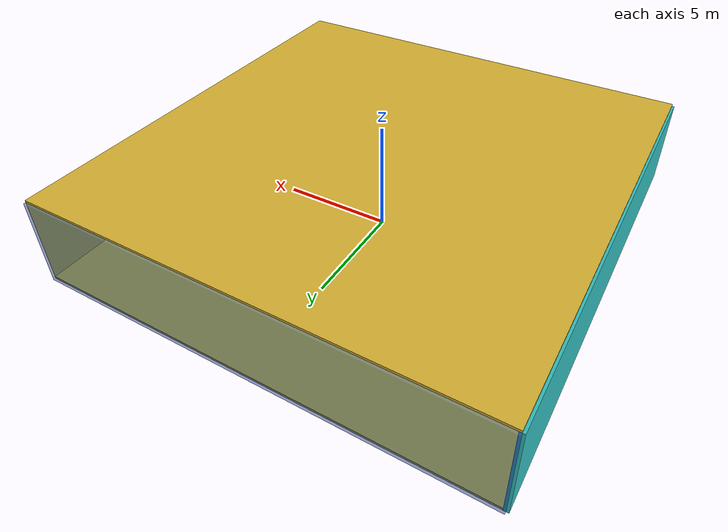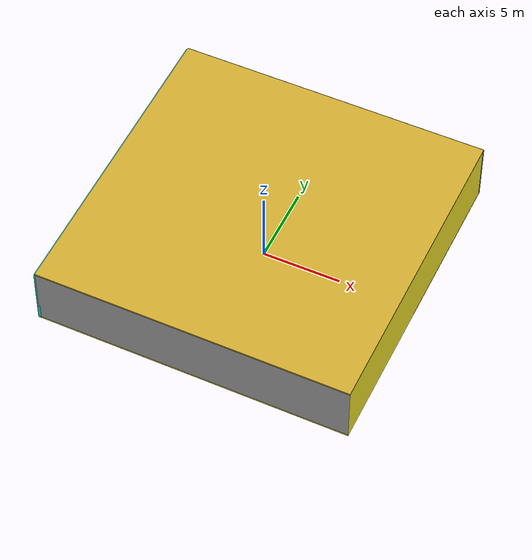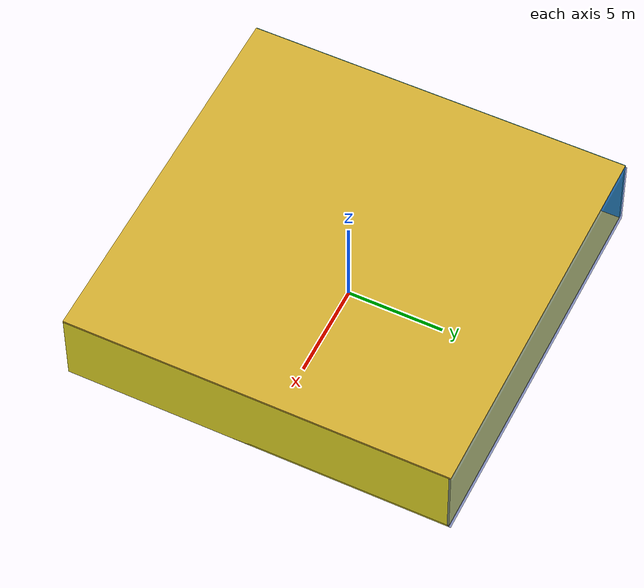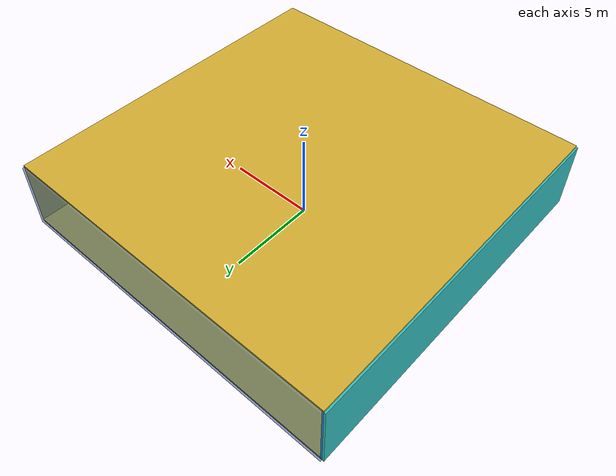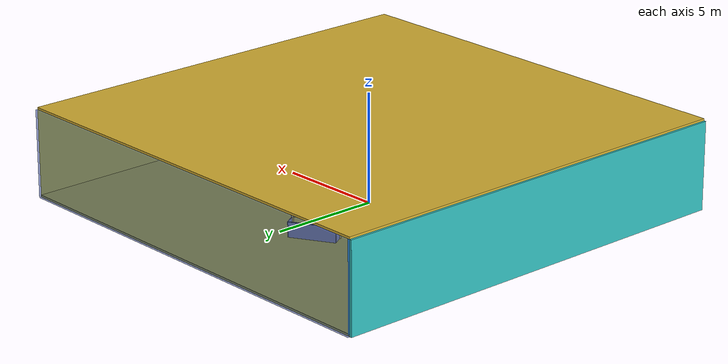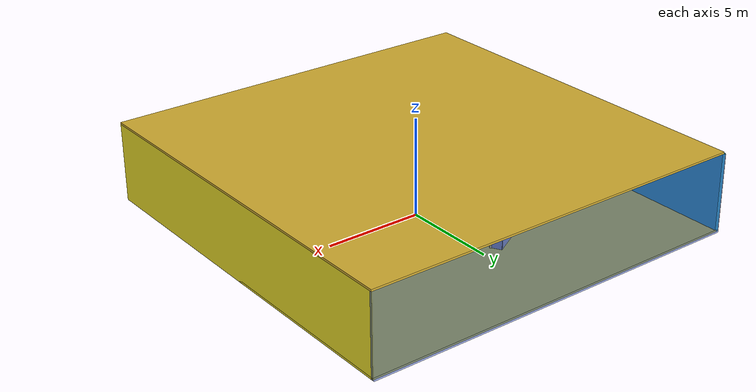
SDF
<sdf version="1.4">
 <world name="default">
  <physics type="ode">
   <max_step_size>0.001</max_step_size>
   <real_time_factor>1</real_time_factor>
   <real_time_update_rate>1000</real_time_update_rate>
   <gravity>0 0 -9.8</gravity>
  </physics>
  <scene><ambient>0.4 0.4 0.4 1</ambient><background>0.7 0.7 0.7 1</background><shadows>1</shadows></scene>
  <model name="Surrounding">
   <static>1</static>
   <link name="Ceiling">
    <collision name="Ceiling_Collision"><geometry><box><size>20 20 0.1</size></box></geometry></collision>
    <visual name="Ceiling_Visual">
     <geometry><box><size>20 20 0.1</size></box></geometry>
     <material>
      <script><uri>file://media/materials/scripts/gazebo.material</uri><name>Gazebo/Gold</name></script>
     </material>
    </visual>
    <pose>0 0 4.05 0 0 0</pose>
   </link>
   <link name="Wall_South">
    <collision name="Wall_South_Collision">
     <geometry><box><size>20 0 4</size></box></geometry>
     <pose>0 0 2 0 -0 0</pose>
    </collision>
    <visual name="Wall_South_Visual">
     <pose>0 0 2 0 -0 0</pose>
     <geometry><box><size>20 0 4</size></box></geometry>
     <material>
      <script><uri>file://media/materials/scripts/gazebo.material</uri><name>Gazebo/Grey</name></script>
     </material>
    </visual>
    <velocity_decay><linear>0</linear><angular>0</angular></velocity_decay>
    <pose>0 -10 0 0 -0 0</pose>
   </link>
   <link name="Wall_East">
    <collision name="Wall_21_Collision">
     <geometry><box><size>20 0 4</size></box></geometry>
     <pose>0 0 2 0 -0 0</pose>
    </collision>
    <visual name="Wall_21_Visual">
     <pose>0 0 2 0 -0 0</pose>
     <geometry><box><size>20 0 4</size></box></geometry>
     <material>
      <script><uri>file://media/materials/scripts/gazebo.material</uri><name>Gazebo/Yellow</name></script>
     </material>
    </visual>
    <velocity_decay><linear>0</linear><angular>0</angular></velocity_decay>
    <pose>10 0 0 0 -0 1.5708</pose>
   </link>
   <link name="Wall_North">
    <collision name="Wall_22_Collision">
     <geometry><box><size>20 0.2 4</size></box></geometry>
     <pose>0 0 2 0 -0 0</pose>
    </collision>
    <visual name="Wall_22_Visual">
     <pose>0 0 2 0 -0 0</pose>
     <geometry><box><size>20 0.2 4</size></box></geometry>
     <material>
      <script><uri>file://media/materials/scripts/gazebo.material</uri><name>Gazebo/BlueTransparent</name></script>
     </material>
    </visual>
    <velocity_decay><linear>0</linear><angular>0</angular></velocity_decay>
    <pose>0 10 0 0 -0 0</pose>
   </link>
   <link name="Wall_West">
    <collision name="Wall_23_Collision">
     <geometry><box><size>20 0.2 4</size></box></geometry>
     <pose>0 0 2 0 -0 0</pose>
    </collision>
    <visual name="Wall_23_Visual">
     <pose>0 0 2 0 -0 0</pose>
     <geometry><box><size>20 0.2 4</size></box></geometry>
     <material>
      <script><uri>file://media/materials/scripts/gazebo.material</uri><name>Gazebo/Turquoise</name></script>
     </material>
    </visual>
    <velocity_decay><linear>0</linear><angular>0</angular></velocity_decay>
    <pose>-10 0 0 0 0 -1.5708</pose>
   </link>
   <link name="Ground_link">
    <collision name="collision">
     <pose>0 0 .05 0 -0 0</pose>
     <geometry><box><size>20 20 0.1</size></box></geometry>
    </collision>
    <visual name="visual">
     <pose>0 0 .05 0 -0 0</pose>
     <geometry><box><size>20 20 0.1</size></box></geometry>
     <material>
      <script><uri>file://media/materials/scripts/gazebo.material</uri><name>Gazebo/Yellow</name></script>
     </material>
    </visual>
   </link>
   <static>1</static>
  </model>
  <spherical_coordinates>
   <surface_model>EARTH_WGS84</surface_model>
   <latitude_deg>0</latitude_deg>
   <longitude_deg>0</longitude_deg>
   <elevation>0</elevation>
   <heading_deg>0</heading_deg>
  </spherical_coordinates>
  <light name="lightball_0" type="diffuse">
   <diffuse>0.8 0.8 0.8 1</diffuse>
   <specular>0.2 0.2 0.2 1</specular>
   <attenuation>
    <range>100</range>
    <constant>0.7</constant>
    <linear>0.01</linear>
    <quadratic>0.001</quadratic>
   </attenuation>
   <direction>-0.5 0.1 -0.9</direction>
   <pose>-3.73245501716 -7.08485159895 2.77468745232 0 0 0</pose>
  </light>
  <light name="lightball_1" type="diffuse">
   <diffuse>0.8 0.8 0.8 1</diffuse>
   <specular>0.2 0.2 0.2 1</specular>
   <attenuation>
    <range>100</range>
    <constant>0.7</constant>
    <linear>0.01</linear>
    <quadratic>0.001</quadratic>
   </attenuation>
   <direction>-0.5 0.1 -0.9</direction>
   <pose>-9.93720009844 -0.903280667743 0.500925632591 0 0 0</pose>
  </light>
  <light name="lightball_2" type="diffuse">
   <diffuse>0.8 0.8 0.8 1</diffuse>
   <specular>0.2 0.2 0.2 1</specular>
   <attenuation>
    <range>100</range>
    <constant>0.7</constant>
    <linear>0.01</linear>
    <quadratic>0.001</quadratic>
   </attenuation>
   <direction>-0.5 0.1 -0.9</direction>
   <pose>-8.13334967059 8.15306069547 2.89767930498 0 0 0</pose>
  </light>
  <light name="lightball_3" type="diffuse">
   <diffuse>0.8 0.8 0.8 1</diffuse>
   <specular>0.2 0.2 0.2 1</specular>
   <attenuation>
    <range>100</range>
    <constant>0.7</constant>
    <linear>0.01</linear>
    <quadratic>0.001</quadratic>
   </attenuation>
   <direction>-0.5 0.1 -0.9</direction>
   <pose>-3.7696786673 0.918008648875 2.36411653255 0 0 0</pose>
  </light>
  <light name="lightball_4" type="diffuse">
   <diffuse>0.8 0.8 0.8 1</diffuse>
   <specular>0.2 0.2 0.2 1</specular>
   <attenuation>
    <range>100</range>
    <constant>0.7</constant>
    <linear>0.01</linear>
    <quadratic>0.001</quadratic>
   </attenuation>
   <direction>-0.5 0.1 -0.9</direction>
   <pose>8.62759699546 4.32853646415 2.31587621946 0 0 0</pose>
  </light>
  <light name="lightball_5" type="diffuse">
   <diffuse>0.8 0.8 0.8 1</diffuse>
   <specular>0.2 0.2 0.2 1</specular>
   <attenuation>
    <range>100</range>
    <constant>0.7</constant>
    <linear>0.01</linear>
    <quadratic>0.001</quadratic>
   </attenuation>
   <direction>-0.5 0.1 -0.9</direction>
   <pose>-8.27861097024 -9.65536792719 2.82617608674 0 0 0</pose>
  </light>
  <light name="lightball_6" type="diffuse">
   <diffuse>0.8 0.8 0.8 1</diffuse>
   <specular>0.2 0.2 0.2 1</specular>
   <attenuation>
    <range>100</range>
    <constant>0.7</constant>
    <linear>0.01</linear>
    <quadratic>0.001</quadratic>
   </attenuation>
   <direction>-0.5 0.1 -0.9</direction>
   <pose>-5.07712655664 -3.88637846816 2.13212480963 0 0 0</pose>
  </light>
  <light name="lightball_7" type="diffuse">
   <diffuse>0.8 0.8 0.8 1</diffuse>
   <specular>0.2 0.2 0.2 1</specular>
   <attenuation>
    <range>100</range>
    <constant>0.7</constant>
    <linear>0.01</linear>
    <quadratic>0.001</quadratic>
   </attenuation>
   <direction>-0.5 0.1 -0.9</direction>
   <pose>-3.31846608228 6.13121729027 3.44735017146 0 0 0</pose>
  </light>
  <light name="lightball_8" type="diffuse">
   <diffuse>0.8 0.8 0.8 1</diffuse>
   <specular>0.2 0.2 0.2 1</specular>
   <attenuation>
    <range>100</range>
    <constant>0.7</constant>
    <linear>0.01</linear>
    <quadratic>0.001</quadratic>
   </attenuation>
   <direction>-0.5 0.1 -0.9</direction>
   <pose>-4.55631973923 -5.10075218294 0.817294544108 0 0 0</pose>
  </light>
  <light name="lightball_9" type="diffuse">
   <diffuse>0.8 0.8 0.8 1</diffuse>
   <specular>0.2 0.2 0.2 1</specular>
   <attenuation>
    <range>100</range>
    <constant>0.7</constant>
    <linear>0.01</linear>
    <quadratic>0.001</quadratic>
   </attenuation>
   <direction>-0.5 0.1 -0.9</direction>
   <pose>9.290147485 9.51694248247 0.858242050599 0 0 0</pose>
  </light>
  <light name="lightball_10" type="diffuse">
   <diffuse>0.8 0.8 0.8 1</diffuse>
   <specular>0.2 0.2 0.2 1</specular>
   <attenuation>
    <range>100</range>
    <constant>0.7</constant>
    <linear>0.01</linear>
    <quadratic>0.001</quadratic>
   </attenuation>
   <direction>-0.5 0.1 -0.9</direction>
   <pose>6.14737514716 -4.77100923056 2.59756248001 0 0 0</pose>
  </light>
  <light name="lightball_11" type="diffuse">
   <diffuse>0.8 0.8 0.8 1</diffuse>
   <specular>0.2 0.2 0.2 1</specular>
   <attenuation>
    <range>100</range>
    <constant>0.7</constant>
    <linear>0.01</linear>
    <quadratic>0.001</quadratic>
   </attenuation>
   <direction>-0.5 0.1 -0.9</direction>
   <pose>7.73259290965 -0.380208644833 3.16361218955 0 0 0</pose>
  </light>
  <light name="lightball_12" type="diffuse">
   <diffuse>0.8 0.8 0.8 1</diffuse>
   <specular>0.2 0.2 0.2 1</specular>
   <attenuation>
    <range>100</range>
    <constant>0.7</constant>
    <linear>0.01</linear>
    <quadratic>0.001</quadratic>
   </attenuation>
   <direction>-0.5 0.1 -0.9</direction>
   <pose>6.04118367271 -4.4128404803 2.27356341506 0 0 0</pose>
  </light>
  <include>
   <uri>model://robocup_3Dsim_goal</uri>
   <pose>-1.47747368763 4.27723202438 0 0 0 2.08737617571</pose>
  </include>
  <include>
   <uri>model://textured_shapes</uri>
   <pose>7.45921629785 -0.95602600759 0 0 0 1.08365783507</pose>
  </include>
 </world>
</sdf>

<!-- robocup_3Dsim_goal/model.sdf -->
<sdf version="1.5">
  <model name="robocup_3d_goal">
    <static>true</static>
    <link name="left_post">
      <pose>0 1.05 0.45 0 0 0</pose>
      <collision name="collision">
        <geometry>
          <cylinder>
            <radius>0.05</radius>
            <length>0.9</length>
          </cylinder>
        </geometry>
      </collision>
      <visual name="visual">
        <geometry>
          <cylinder>
            <radius>0.05</radius>
            <length>0.9</length>
          </cylinder>
        </geometry>
        <material>
          <script>
            <uri>file://media/materials/scripts/gazebo.material</uri>
            <name>Gazebo/ZincYellow</name>
          </script>
        </material>
      </visual>
    </link>
    <link name="left_support_horiz_lower">
      <pose>0.30 1.05 0.01 0 0 0</pose>
      <collision name="collision">
        <geometry>
          <box>
            <size>0.50 0.02 0.02</size>
          </box>
        </geometry>
      </collision>
      <visual name="visual">
        <geometry>
          <box>
            <size>0.50 0.02 0.02</size>
          </box>
        </geometry>
        <material>
          <script>
            <uri>file://media/materials/scripts/gazebo.material</uri>
            <name>Gazebo/White</name>
          </script>
        </material>
      </visual>
    </link>
    <link name="left_support_horiz_upper">
      <pose>0.30 1.05 0.79 0 0 0</pose>
      <collision name="collision">
        <geometry>
          <box>
            <size>0.50 0.02 0.02</size>
          </box>
        </geometry>
      </collision>
      <visual name="visual">
        <geometry>
          <box>
            <size>0.50 0.02 0.02</size>
          </box>
        </geometry>
        <material>
          <script>
            <uri>file://media/materials/scripts/gazebo.material</uri>
            <name>Gazebo/White</name>
          </script>
        </material>
      </visual>
    </link>
    <link name="left_support_vertical">
      <pose>0.56 1.05 0.4 0 1.5708 0</pose>
      <collision name="collision">
        <geometry>
          <box>
            <size>0.80 0.02 0.02</size>
          </box>
        </geometry>
      </collision>
      <visual name="visual">
        <geometry>
          <box>
            <size>0.80 0.02 0.02</size>
          </box>
        </geometry>
        <material>
          <script>
            <uri>file://media/materials/scripts/gazebo.material</uri>
            <name>Gazebo/White</name>
          </script>
        </material>
      </visual>
    </link>
    <link name="right_support_horiz_lower">
      <pose>0.30 -1.05 0.01 0 0 0</pose>
      <collision name="collision">
        <geometry>
          <box>
            <size>0.50 0.02 0.02</size>
          </box>
        </geometry>
      </collision>
      <visual name="visual">
        <geometry>
          <box>
            <size>0.50 0.02 0.02</size>
          </box>
        </geometry>
        <material>
          <script>
            <uri>file://media/materials/scripts/gazebo.material</uri>
            <name>Gazebo/White</name>
          </script>
        </material>
      </visual>
    </link>
    <link name="right_support_horiz_upper">
      <pose>0.30 -1.05 0.79 0 0 0</pose>
      <collision name="collision">
        <geometry>
          <box>
            <size>0.50 0.02 0.02</size>
          </box>
        </geometry>
      </collision>
      <visual name="visual">
        <geometry>
          <box>
            <size>0.50 0.02 0.02</size>
          </box>
        </geometry>
        <material>
          <script>
            <uri>file://media/materials/scripts/gazebo.material</uri>
            <name>Gazebo/White</name>
          </script>
        </material>
      </visual>
    </link>
    <link name="right_support_vertical">
      <pose>0.56 -1.05 0.4 0 1.5708 0</pose>
      <collision name="collision">
        <geometry>
          <box>
            <size>0.80 0.02 0.02</size>
          </box>
        </geometry>
      </collision>
      <visual name="visual">
        <geometry>
          <box>
            <size>0.80 0.02 0.02</size>
          </box>
        </geometry>
        <material>
          <script>
            <uri>file://media/materials/scripts/gazebo.material</uri>
            <name>Gazebo/White</name>
          </script>
        </material>
      </visual>
    </link>
    <link name="center_support_horiz_lower">
      <pose>0.56 0 0.01 0 1.5708 0</pose>
      <collision name="collision">
        <geometry>
          <box>
            <size>0.02 2.08 0.02</size>
          </box>
        </geometry>
      </collision>
      <visual name="visual">
        <geometry>
          <box>
            <size>0.02 2.08 0.02</size>
          </box>
        </geometry>
        <material>
          <script>
            <uri>file://media/materials/scripts/gazebo.material</uri>
            <name>Gazebo/White</name>
          </script>
        </material>
      </visual>
    </link>
    <link name="center_support_horiz_upper">
      <pose>0.56 0 0.79 0 1.5708 0</pose>
      <collision name="collision">
        <geometry>
          <box>
            <size>0.02 2.08 0.02</size>
          </box>
        </geometry>
      </collision>
      <visual name="visual">
        <geometry>
          <box>
            <size>0.02 2.08 0.02</size>
          </box>
        </geometry>
        <material>
          <script>
            <uri>file://media/materials/scripts/gazebo.material</uri>
            <name>Gazebo/White</name>
          </script>
        </material>
      </visual>
    </link>
    <link name="right_post">
      <pose>0 -1.05 0.45 0 0 0</pose>
      <collision name="collision">
        <geometry>
          <cylinder>
            <radius>0.05</radius>
            <length>0.9</length>
          </cylinder>
        </geometry>
      </collision>
      <visual name="visual">
        <geometry>
          <cylinder>
            <radius>0.05</radius>
            <length>0.9</length>
          </cylinder>
        </geometry>
        <material>
          <script>
            <uri>file://media/materials/scripts/gazebo.material</uri>
            <name>Gazebo/ZincYellow</name>
          </script>
        </material>
      </visual>
    </link>
    <link name="crossbar">
      <pose>0 0 0.85 1.57 1.57 0</pose>
      <collision name="collision">
        <geometry>
          <cylinder>
            <radius>0.05</radius>
            <length>2.0</length>
          </cylinder>
        </geometry>
      </collision>
      <visual name="visual">
        <geometry>
          <cylinder>
            <radius>0.05</radius>
            <length>2.0</length>
          </cylinder>
        </geometry>
        <material>
          <script>
            <uri>file://media/materials/scripts/gazebo.material</uri>
            <name>Gazebo/ZincYellow</name>
          </script>
        </material>
      </visual>
    </link>
    <link name="center_net">
      <pose>0.56 0 0.40 0 0 0</pose>
      <collision name="collision">
        <geometry>
          <box>
            <size>0.01 2.1 0.80</size>
          </box>
        </geometry>
      </collision>
      <visual name="visual">
        <geometry>
          <box>
            <size>0.01 2.1 0.80</size>
          </box>
        </geometry>
        <material>
          <script>
            <uri>model://../model_source/models/robocup09_spl_field/materials/scripts/</uri>
            <uri>model://../model_source/models/robocup09_spl_field/materials/textures/</uri>
            <name>RoboCup/Net</name>
          </script>
        </material>
      </visual>
    </link>
    <link name="left_net">
      <pose>0.30 1.05 0.40 0 0 0</pose>
      <collision name="collision">
        <geometry>
          <box>
            <size>0.50 0.01 0.76</size>
          </box>
        </geometry>
      </collision>
      <visual name="visual">
        <geometry>
          <box>
            <size>0.50 0.01 0.76</size>
          </box>
        </geometry>
        <material>
          <script>
            <uri>model://../model_source/models/robocup09_spl_field/materials/scripts/</uri>
            <uri>model://../model_source/models/robocup09_spl_field/materials/textures/</uri>
            <name>RoboCup/Net</name>
          </script>
        </material>
      </visual>
    </link>
    <link name="right_net">
      <pose>0.30 -1.05 0.40 0 0 0</pose>
      <collision name="collision">
        <geometry>
          <box>
            <size>0.50 0.01 0.76</size>
          </box>
        </geometry>
      </collision>
      <visual name="visual">
        <geometry>
          <box>
            <size>0.50 0.01 0.76</size>
          </box>
        </geometry>
        <material>
          <script>
            <uri>model://../model_source/models/robocup09_spl_field/materials/scripts/</uri>
            <uri>model://../model_source/models/robocup09_spl_field/materials/textures/</uri>
            <name>RoboCup/Net</name>
          </script>
        </material>
      </visual>
    </link>
  </model>
</sdf>

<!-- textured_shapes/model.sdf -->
<sdf version="1.6">
  <model name="textured_shapes">
    <pose>0 0 0.5 0 0 0</pose>
    <link name="box">
      <pose>0 -1.5 0 0 0 0</pose>
      <collision name="collision">
        <geometry>
          <box>
            <size>1 1 1</size>
          </box>
        </geometry>
      </collision>
      <visual name="visual">
        <geometry>
          <box>
            <size>1 1 1</size>
          </box>
        </geometry>
        <material>
          <script>
            <uri>model://../model_source/models/textured_shapes/materials/scripts</uri>
            <uri>model://../model_source/models/textured_shapes/materials/textures</uri>
            <name>TexturedShape/Squares</name>
          </script>
        </material>
      </visual>
    </link>
    <link name="sphere">
      <collision name="collision">
        <geometry>
          <sphere>
            <radius>0.5</radius>
          </sphere>
        </geometry>
      </collision>
      <visual name="visual">
        <geometry>
          <sphere>
            <radius>0.5</radius>
          </sphere>
        </geometry>
        <material>
          <script>
            <uri>model://../model_source/models/textured_shapes/materials/scripts</uri>
            <uri>model://../model_source/models/textured_shapes/materials/textures</uri>
            <name>TexturedShape/Squares</name>
          </script>
        </material>
      </visual>
    </link>
    <link name="cylinder">
      <pose>0 1.5 0 0 0 0</pose>
      <collision name="collision">
        <geometry>
          <cylinder>
            <radius>0.5</radius>
            <length>1</length>
          </cylinder>
        </geometry>
      </collision>
      <visual name="visual">
        <geometry>
          <cylinder>
            <radius>0.5</radius>
            <length>1</length>
          </cylinder>
        </geometry>
        <material>
          <script>
            <uri>model://../model_source/models/textured_shapes/materials/scripts</uri>
            <uri>model://../model_source/models/textured_shapes/materials/textures</uri>
            <name>TexturedShape/Squares</name>
          </script>
        </material>
      </visual>
    </link>
  </model>
</sdf>
